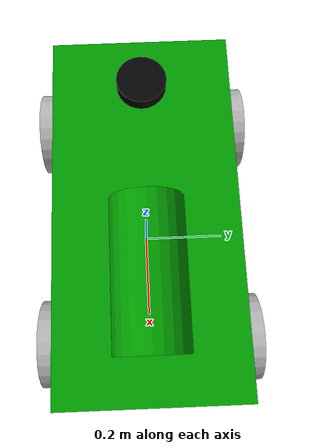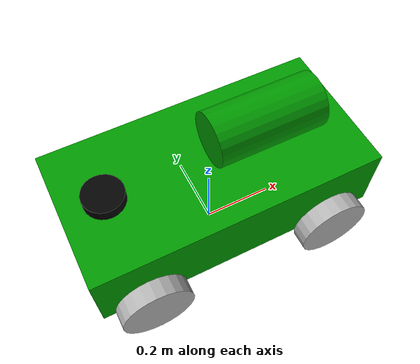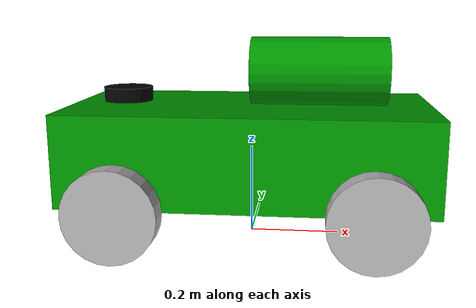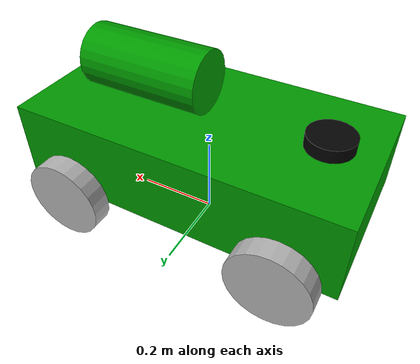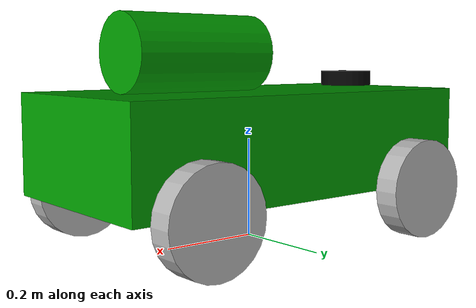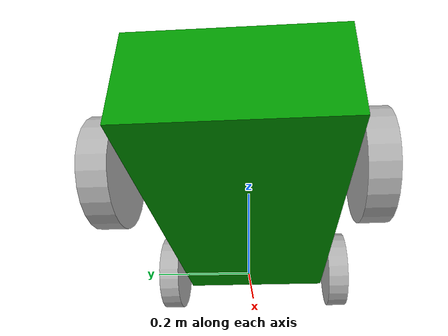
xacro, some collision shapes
<?xml version="1.0"?>
<robot name="other_robot" xmlns:xacro="http://www.ros.org/wiki/xacro">

    <xacro:include filename="$(find other_robot_description)/urdf/common_properties.xacro" />
	<xacro:include filename="$(find other_robot_description)/urdf/mobile_base.xacro" />

	<!--mesh filename="file://$(find my_robot_description)/meshes/base.stl" /-->
	<xacro:include filename="$(find other_robot_description)/urdf/mobile_base_gazebo.xacro" />
</robot>

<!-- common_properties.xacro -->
<robot xmlns:xacro="http://www.ros.org/wiki/xacro">
    <material name="green">
        <color rgba="0 0.6 0 1" />
    </material>
    <material name="gray">
    <color rgba="0.7 0.7 0.7 1" />
    </material>
      <material name="dark">
      <color rgba="0.0118 0.0118 0.0118 1"/>
	</material>

<xacro:macro name="box_inertia" params="m x y z o_xyz o_rpy">
    <inertial>
        <mass value="${m}" />
        <origin xyz="${o_xyz}" rpy="${o_rpy}" />
        <inertia ixx="${(m/12) * (z*z + y*y)}" ixy="0" ixz="0"
                 iyy="${(m/12) * (x*x + z*z)}" iyz="0"
                 izz="${(m/12) * (x*x + y*y)}" />
    </inertial>
</xacro:macro>

<xacro:macro name="cylinder_inertia" params="m r l o_xyz o_rpy">
    <inertial>
        <mass value="${m}" />
        <origin xyz="${o_xyz}" rpy="${o_rpy}" />
        <inertia ixx="${(m/12) * (3*r*r + l*l)}" ixy="0" ixz="0"
                 iyy="${(m/12) * (3*r*r + l*l)}" iyz="0"
                 izz="${(m/2) * (r*r)}" />
    </inertial>
</xacro:macro>

</robot>

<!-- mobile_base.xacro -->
<robot xmlns:xacro="http://www.ros.org/wiki/xacro">
    <xacro:property name="base_length" value="0.8" />
	<xacro:property name="base_width" value="0.4" />
	<xacro:property name="base_height" value="0.2" />
	<xacro:property name="wheel_radius" value="0.1" />
	<xacro:property name="wheel_length" value="0.05" />

	<!--import from other lidar.xacro-->
  	<!--xacro:include filename="$(find other_robot_description)/urdf/rplidar.urdf.xacro" /-->

    <link name="base_footprint" />
    <joint name="base_joint" type="fixed">
        <parent link="base_footprint" />
        <child link="base_link" />
        <origin xyz="0 0 ${wheel_radius}" rpy="0 0 0" />
    </joint>

    <link name="base_link">
	<collision>
        <geometry>
        <box size="${base_length} ${base_width} ${base_height}" />
        </geometry>
        <origin xyz="0 0 ${base_height / 2.0}" rpy="0 0 0" />
	</collision>
        <visual>
            <geometry>
                <box size = "${base_length} ${base_width} ${base_height}" />
            </geometry>
            <origin xyz="0 0 ${base_height / 2.0}" rpy="0 0 0" />
            <material name="green" />
    	</visual>
    	<xacro:box_inertia m="5.0" x="${base_length}" y="${base_width}" z="${base_height}" o_xyz="0 0 ${base_height / 2.0}" o_rpy="0 0 0" />
    </link>

    <link name="shoulder_link">
	<collision>
    <geometry>
        <cylinder radius="0.075" length="0.3" />
    </geometry>
    <origin xyz="0.15 0 0.075" rpy="0 1.57 0" />
	</collision>
        <visual>
            <geometry>
                <cylinder radius="0.075" length="0.3" />
            </geometry>
            <origin xyz="0.15 0 0.075" rpy="0 1.57 0" />
            <material name="green" />
    	</visual>
    	<xacro:cylinder_inertia m="1.0" r="0.075" l="0.3" o_xyz="0.15 0 0.075" o_rpy="0 ${pi / 2.0} 0" />
    </link>

    <joint name="base_shoulder_joint" type="fixed">
      <parent link="base_link" />
      <child link="shoulder_link" />
      <origin xyz="0 0 0.2" rpy="0 0 0" />
      <axis xyz="0 0 1" />
      <limit lower="-1.57" upper="1.57" velocity="100" effort="100"/>
    </joint>

  <link name="base_scan">
    <visual>
      <origin xyz="0 0 0" rpy="0 0 0"/>
      <geometry>
        <mesh filename="package://other_robot_description/meshes/lds.dae" scale="0.001 0.001 0.001"/>
      </geometry>
      <material name="dark"/>
    </visual>

    <collision>
      <origin xyz="0.015 0 -0.0065" rpy="0 0 0"/>
      <geometry>
        <cylinder length="0.0315" radius="0.055"/>
      </geometry>
    </collision>

    <inertial>
      <mass value="0.114" />
      <origin xyz="0 0 0" />
      <inertia ixx="0.001" ixy="0.0" ixz="0.0"
               iyy="0.001" iyz="0.0"
               izz="0.001" />
    </inertial>

  </link>

    <xacro:macro name="wheel_link" params="prefix">
    <link name="${prefix}_wheel_link">
	<collision>
    <geometry>
        <sphere radius="${wheel_radius / 2.0}" />
    </geometry>
    <origin xyz="0 0 0" rpy="0 0 0" />
	</collision>
        <visual>
            <geometry>
                <cylinder radius="${wheel_radius}"
                          length="${wheel_length}" />
            </geometry>
            <origin xyz="0 0 0" rpy="${pi / 2.0} 0 0" />
            <material name="gray" />
    </visual>
    <xacro:cylinder_inertia m="1.0" r="${wheel_radius}" l="${wheel_length}" o_xyz="0 0 0" o_rpy="${pi / 2.0} 0 0" />
    </link>
    </xacro:macro>

    <xacro:wheel_link prefix="right" />
    <xacro:wheel_link prefix="left" />
    <xacro:wheel_link prefix="right_frot" />
    <xacro:wheel_link prefix="left_frot" />

    <joint name="scan_joint" type="fixed">
    <parent link="base_link"/>
    <child link="base_scan"/>
    <origin xyz="-0.3 0.0 0.2265" rpy="0 0 0"/>
    </joint>

    <joint name="base_right_wheel_joint" type="continuous">
      <parent link="base_link" />
      <child link="right_wheel_link" />
      <origin xyz="${-base_length / 3.0} ${-wheel_length / 2.0 - base_width / 2.0} -0" rpy="0 0 0" />
     <axis xyz="0 1 0" />
    </joint>

    <joint name="base_left_wheel_joint" type="continuous">
      <parent link="base_link" />
      <child link="left_wheel_link" />
      <origin xyz="${-base_length / 3.0} ${wheel_length / 2.0 + base_width / 2.0} -0" rpy="0 0 0" />
     <axis xyz="0 1 0" />
    </joint>

    <joint name="base_right_frot_wheel_joint" type="fixed">
      <parent link="base_link" />
      <child link="right_frot_wheel_link" />
      <origin xyz="${base_length / 3.0} ${-(wheel_length / 2.0 + base_width / 2.0)} -0" rpy="0 0 0" />
     <axis xyz="0 1 0" />
    </joint>

    <joint name="base_left_frot_wheel_joint" type="fixed">
      <parent link="base_link" />
      <child link="left_frot_wheel_link" />
      <origin xyz="${base_length / 3.0} ${wheel_length / 2.0 + base_width / 2.0} -0" rpy="0 0 0" />
     <axis xyz="0 1 0" />
    </joint>

</robot>
